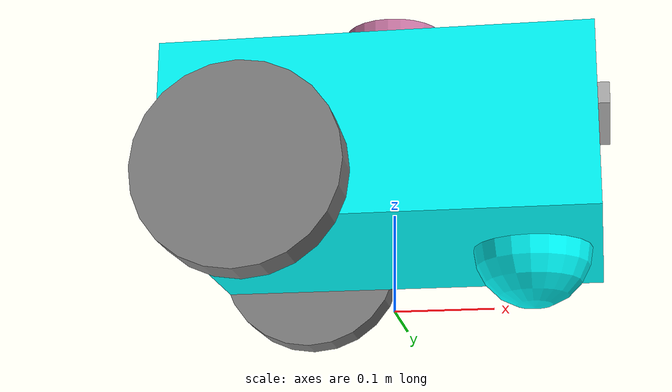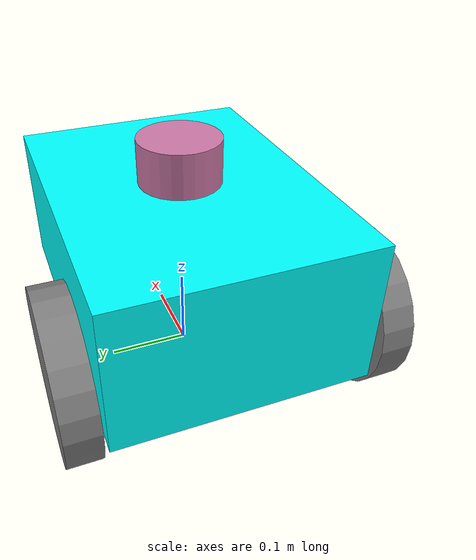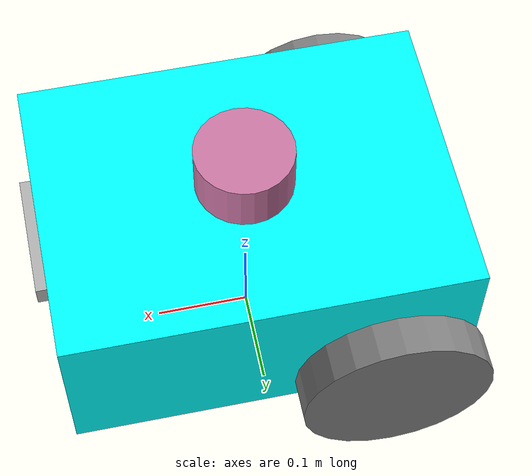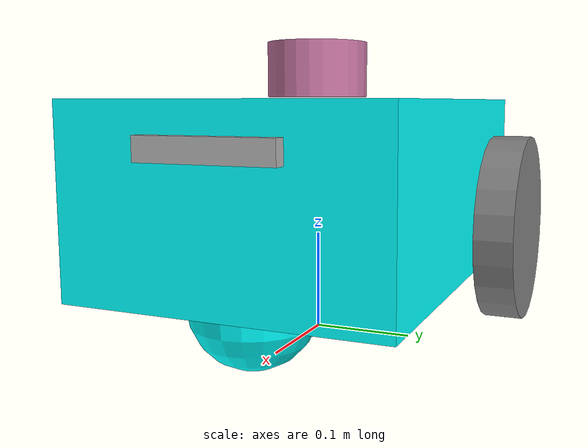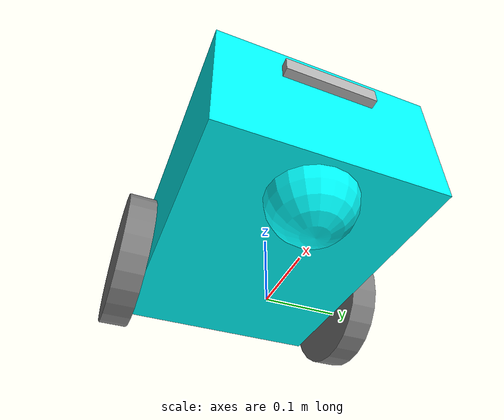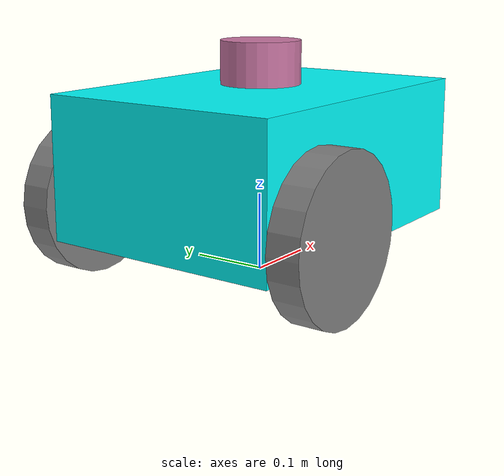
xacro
<?xml version="1.0"?>
<robot name="sam_bot" xmlns:xacro="http://ros.org/wiki/xacro">

  <!-- Define robot constants -->
  <xacro:property name="base_width" value="0.31"/>
  <xacro:property name="base_length" value="0.42"/>
  <xacro:property name="base_height" value="0.18"/>

  <xacro:property name="wheel_radius" value="0.10"/>
  <xacro:property name="wheel_width" value="0.04"/>
  <xacro:property name="wheel_ygap" value="0.025"/>
  <xacro:property name="wheel_zoff" value="0.05"/>
  <xacro:property name="wheel_xoff" value="0.12"/>

  <xacro:property name="caster_xoff" value="0.14"/>

  <!-- Define some commonly used intertial properties  -->
  <xacro:macro name="box_inertia" params="m w h d">
    <inertial>
      <origin xyz="0 0 0" rpy="${pi/2} 0 ${pi/2}"/>
      <mass value="${m}"/>
      <inertia ixx="${(m/12) * (h*h + d*d)}" ixy="0.0" ixz="0.0" iyy="${(m/12) * (w*w + d*d)}" iyz="0.0" izz="${(m/12) * (w*w + h*h)}"/>
    </inertial>
  </xacro:macro>

  <xacro:macro name="cylinder_inertia" params="m r h">
    <inertial>
      <origin xyz="0 0 0" rpy="${pi/2} 0 0" />
      <mass value="${m}"/>
      <inertia ixx="${(m/12) * (3*r*r + h*h)}" ixy = "0" ixz = "0" iyy="${(m/12) * (3*r*r + h*h)}" iyz = "0" izz="${(m/2) * (r*r)}"/>
    </inertial>
  </xacro:macro>

  <xacro:macro name="sphere_inertia" params="m r">
    <inertial>
      <mass value="${m}"/>
      <inertia ixx="${(2/5) * m * (r*r)}" ixy="0.0" ixz="0.0" iyy="${(2/5) * m * (r*r)}" iyz="0.0" izz="${(2/5) * m * (r*r)}"/>
    </inertial>
  </xacro:macro>

  <!-- Robot Base -->
  <link name="base_link">
    <visual>
      <geometry>
        <box size="${base_length} ${base_width} ${base_height}"/>
      </geometry>
      <material name="Cyan">
        <color rgba="0 1.0 1.0 1.0"/>
      </material>
    </visual>

    <collision>
      <geometry>
        <box size="${base_length} ${base_width} ${base_height}"/>
      </geometry>
    </collision>

    <xacro:box_inertia m="15" w="${base_width}" d="${base_length}" h="${base_height}"/>
  </link>

   <!-- Robot Footprint -->
  <link name="base_footprint">
  	<xacro:box_inertia m="0" w="0" d="0" h="0"/>
  </link>

  <joint name="base_joint" type="fixed">
    <parent link="base_footprint"/>
    <child link="base_link"/>
    <origin xyz="0.0 0.0 ${(wheel_radius+wheel_zoff)}" rpy="0 0 0"/>
  </joint>

  <!-- Wheels -->
  <xacro:macro name="wheel" params="prefix x_reflect y_reflect">
    <link name="${prefix}_link">
      <visual>
        <origin xyz="0 0 0" rpy="${pi/2} 0 0"/>
        <geometry>
            <cylinder radius="${wheel_radius}" length="${wheel_width}"/>
        </geometry>
        <material name="Gray">
          <color rgba="0.5 0.5 0.5 1.0"/>
        </material>
      </visual>

      <collision>
        <origin xyz="0 0 0" rpy="${pi/2} 0 0"/>
        <geometry>
          <cylinder radius="${wheel_radius}" length="${wheel_width}"/>
        </geometry>
      </collision>

      <xacro:cylinder_inertia m="0.5" r="${wheel_radius}" h="${wheel_width}"/>
    </link>

    <joint name="${prefix}_joint" type="continuous">
      <parent link="base_link"/>
      <child link="${prefix}_link"/>
      <origin xyz="${x_reflect*wheel_xoff} ${y_reflect*(base_width/2+wheel_ygap)} ${-wheel_zoff}" rpy="0 0 0"/>
      <axis xyz="0 1 0"/>
    </joint>
  </xacro:macro>

  <xacro:wheel prefix="drivewhl_l" x_reflect="-1" y_reflect="1" />
  <xacro:wheel prefix="drivewhl_r" x_reflect="-1" y_reflect="-1" />

  <link name="front_caster">
    <visual>
      <geometry>
        <sphere radius="${(wheel_radius+wheel_zoff-(base_height/2))}"/>
      </geometry>
      <material name="Cyan">
        <color rgba="0 1.0 1.0 1.0"/>
      </material>
    </visual>

    <collision>
      <origin xyz="0 0 0" rpy="0 0 0"/>
      <geometry>
        <sphere radius="${(wheel_radius+wheel_zoff-(base_height/2))}"/>
      </geometry>
    </collision>

    <xacro:sphere_inertia m="0.5" r="${(wheel_radius+wheel_zoff-(base_height/2))}"/>
  </link>

  <joint name="caster_joint" type="fixed">
    <parent link="base_link"/>
    <child link="front_caster"/>
    <origin xyz="${caster_xoff} 0.0 ${-(base_height/2)}" rpy="0 0 0"/>
  </joint>

  <link name="imu_link">
    <visual>
      <geometry>
        <box size="0.1 0.1 0.1"/>
      </geometry>
    </visual>

    <collision>
      <geometry>
        <box size="0.1 0.1 0.1"/>
      </geometry>
    </collision>

    <xacro:box_inertia m="0.1" w="0.1" d="0.1" h="0.1"/>
  </link>

  <joint name="imu_joint" type="fixed">
    <parent link="base_link"/>
    <child link="imu_link"/>
    <origin xyz="0 0 0.01"/>
  </joint>

  <gazebo reference="imu_link">
    <sensor name="imu_sensor" type="imu">
      <plugin filename="libgazebo_ros_imu_sensor.so" name="imu_plugin">
        <ros>
          <remapping>~/out:=imu</remapping>
        </ros>
        <initial_orientation_as_reference>false</initial_orientation_as_reference>
      </plugin>
      <always_on>true</always_on>
      <update_rate>100</update_rate>
      <visualize>true</visualize>
     <imu>
     	<angular_velocity>
     	  <x>
     	    <noise type="gaussian">
              <mean>0.0</mean>
              <stddev>2e-4</stddev>
              <bias_mean>0.0000075</bias_mean>
              <bias_stddev>0.0000008</bias_stddev>
            </noise>
          </x>
          <y>
            <noise type="gaussian">
              <mean>0.0</mean>
              <stddev>2e-4</stddev>
              <bias_mean>0.0000075</bias_mean>
              <bias_stddev>0.0000008</bias_stddev>
            </noise>
          </y>
          <z>
            <noise type="gaussian">
              <mean>0.0</mean>
              <stddev>2e-4</stddev>
              <bias_mean>0.0000075</bias_mean>
              <bias_stddev>0.0000008</bias_stddev>
            </noise>
          </z>
        </angular_velocity>
        <linear_acceleration>
          <x>
            <noise type="gaussian">
              <mean>0.0</mean>
              <stddev>1.7e-2</stddev>
              <bias_mean>0.1</bias_mean>
              <bias_stddev>0.001</bias_stddev>
            </noise>
          </x>
          <y>
            <noise type="gaussian">
              <mean>0.0</mean>
              <stddev>1.7e-2</stddev>
              <bias_mean>0.1</bias_mean>
              <bias_stddev>0.001</bias_stddev>
            </noise>
          </y>
          <z>
            <noise type="gaussian">
              <mean>0.0</mean>
              <stddev>1.7e-2</stddev>
              <bias_mean>0.1</bias_mean>
              <bias_stddev>0.001</bias_stddev>
            </noise>
          </z>
        </linear_acceleration>
      </imu>
    </sensor>
  </gazebo>

  <gazebo>
    <plugin name='diff_drive' filename='libgazebo_ros_diff_drive.so'>
      <ros>
      </ros>

      <update_rate>30</update_rate>

      <!-- wheels -->
      <left_joint>drivewhl_l_joint</left_joint>
      <right_joint>drivewhl_r_joint</right_joint>

      <!-- kinematics -->
      <wheel_separation>0.4</wheel_separation>
      <wheel_diameter>0.2</wheel_diameter>

      <!-- limits -->
      <max_wheel_torque>20</max_wheel_torque>
      <max_wheel_acceleration>1.0</max_wheel_acceleration>

      <command_topic>cmd_vel</command_topic>

      <!-- output -->
      <publish_odom>true</publish_odom>
      <publish_odom_tf>true</publish_odom_tf>
      <publish_wheel_tf>true</publish_wheel_tf>

      <odometry_topic>odom</odometry_topic>
      <odometry_frame>odom</odometry_frame>
      <robot_base_frame>base_footprint</robot_base_frame>
    </plugin>
  </gazebo>

 <link name="lidar_link">
    <inertial>
      <origin xyz="0 0 0" rpy="0 0 0"/>
      <mass value="0.125"/>
      <inertia ixx="0.001"  ixy="0"  ixz="0" iyy="0.001" iyz="0" izz="0.001" />
    </inertial>

    <collision>
      <origin xyz="0 0 0" rpy="0 0 0"/>
      <geometry>
         <cylinder radius="0.0508" length="0.055"/>
      </geometry>
    </collision>

    <visual>
      <origin xyz="0 0 0" rpy="0 0 0"/>
      <geometry>
         <cylinder radius="0.0508" length="0.055"/>
      </geometry>
    </visual>
  </link>

  <joint name="lidar_joint" type="fixed">
    <parent link="base_link"/>
    <child link="lidar_link"/>
    <origin xyz="0 0 0.12" rpy="0 0 0"/>
  </joint>

  <gazebo reference="lidar_link">
    <sensor name="lidar" type="ray">
      <always_on>true</always_on>
      <visualize>true</visualize>
      <update_rate>5</update_rate>
      <ray>
        <scan>
          <horizontal>
            <samples>360</samples>
            <resolution>1.000000</resolution>
            <min_angle>0.000000</min_angle>
            <max_angle>6.280000</max_angle>
          </horizontal>
        </scan>
        <range>
          <min>0.120000</min>
          <max>3.5</max>
          <resolution>0.015000</resolution>
        </range>
        <noise>
          <type>gaussian</type>
          <mean>0.0</mean>
          <stddev>0.01</stddev>
        </noise>
      </ray>
      <plugin name="scan" filename="libgazebo_ros_ray_sensor.so">
        <ros>
          <remapping>~/out:=scan</remapping>
        </ros>
        <output_type>sensor_msgs/LaserScan</output_type>
        <frame_name>lidar_link</frame_name>
      </plugin>
    </sensor>
  </gazebo>

  <link name="camera_link">
    <visual>
      <origin xyz="0 0 0" rpy="0 0 0"/>
      <geometry>
        <box size="0.015 0.130 0.022"/>
      </geometry>
    </visual>

    <collision>
      <origin xyz="0 0 0" rpy="0 0 0"/>
      <geometry>
        <box size="0.015 0.130 0.022"/>
      </geometry>
    </collision>

    <inertial>
      <origin xyz="0 0 0" rpy="0 0 0"/>
      <mass value="0.035"/>
      <inertia ixx="0.001"  ixy="0"  ixz="0" iyy="0.001" iyz="0" izz="0.001" />
    </inertial>
  </link>

  <joint name="camera_joint" type="fixed">
    <parent link="base_link"/>
    <child link="camera_link"/>
    <origin xyz="0.215 0 0.05" rpy="0 0 0"/>
  </joint>

  <link name="camera_depth_frame"/>

  <joint name="camera_depth_joint" type="fixed">
    <origin xyz="0 0 0" rpy="${-pi/2} 0 ${-pi/2}"/>
    <parent link="camera_link"/>
    <child link="camera_depth_frame"/>
  </joint>

  <gazebo reference="camera_link">
    <sensor name="depth_camera" type="depth">
      <visualize>true</visualize>
      <update_rate>30.0</update_rate>
      <camera name="camera">
        <horizontal_fov>1.047198</horizontal_fov>
        <image>
          <width>640</width>
          <height>480</height>
          <format>R8G8B8</format>
        </image>
        <clip>
          <near>0.05</near>
          <far>3</far>
        </clip>
      </camera>
      <plugin name="depth_camera_controller" filename="libgazebo_ros_camera.so">
        <baseline>0.2</baseline>
        <alwaysOn>true</alwaysOn>
        <updateRate>0.0</updateRate>
        <frame_name>camera_depth_frame</frame_name>
        <pointCloudCutoff>0.5</pointCloudCutoff>
        <pointCloudCutoffMax>3.0</pointCloudCutoffMax>
        <distortionK1>0</distortionK1>
        <distortionK2>0</distortionK2>
        <distortionK3>0</distortionK3>
        <distortionT1>0</distortionT1>
        <distortionT2>0</distortionT2>
        <CxPrime>0</CxPrime>
        <Cx>0</Cx>
        <Cy>0</Cy>
        <focalLength>0</focalLength>
        <hackBaseline>0</hackBaseline>
      </plugin>
    </sensor>
  </gazebo>

  <gazebo>
    <plugin name="sambot_joint_state" filename="libgazebo_ros_joint_state_publisher.so">
    <ros>
        <remapping>~/out:=joint_states</remapping>
    </ros>
    <update_rate>30</update_rate>
    <joint_name>drivewhl_l_joint</joint_name>
    <joint_name>drivewhl_r_joint</joint_name>
  </plugin>
</gazebo>

</robot>
